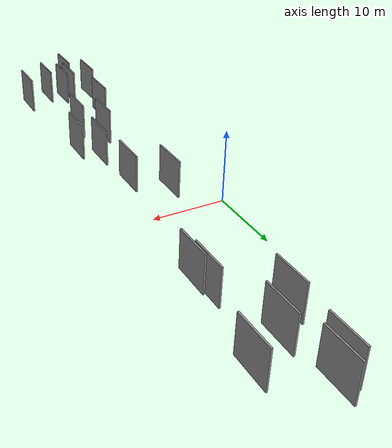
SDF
<sdf version="1.6">
 <world name="default">
  <scene>
   <sky><clouds><speed>12</speed></clouds></sky>
   <ambient>0.4 0.4 0.4 1</ambient>
   <background>0.7 0.7 0.7 1</background>
   <shadows>1</shadows>
  </scene>
  <gravity>0 0 -9.8066</gravity>
  <magnetic_field>6e-06 2.3e-05 -4.2e-05</magnetic_field>
  <physics default="0" name="default_physics" type="ode">
   <ode>
    <solver>
     <type>quick</type>
     <iters>10</iters>
     <sor>1.0</sor>
     <use_dynamic_moi_rescaling>0</use_dynamic_moi_rescaling>
    </solver>
    <constraints>
     <cfm>0</cfm>
     <erp>0.2</erp>
     <contact_max_correcting_vel>100</contact_max_correcting_vel>
     <contact_surface_layer>0.001</contact_surface_layer>
    </constraints>
   </ode>
   <max_step_size>0.004</max_step_size>
   <real_time_factor>1</real_time_factor>
   <real_time_update_rate>250</real_time_update_rate>
  </physics>
  <light name="sun" type="directional">
   <pose>0 0 10 0 0 0</pose>
   <diffuse>0.8 0.8 0.8 1</diffuse>
   <specular>0.2 0.2 0.2 1</specular>
   <attenuation>
    <range>1000</range>
    <constant>0.9</constant>
    <linear>0.01</linear>
    <quadratic>0.001</quadratic>
   </attenuation>
   <direction>-0.5 0.1 -0.9</direction>
  </light>
  <model name="grey_wall_1">
   <static>1</static>
   <pose>11.2324 -13.6043 2.5 0.000000 0.000000 1.570796</pose>
   <link name="link">
    <pose>0 0 2.50 0 0 0</pose>
    <collision name="collision"><geometry><box><size>5.00 0.2 5.00</size></box></geometry></collision>
    <visual name="visual">
     <cast_shadows>0</cast_shadows>
     <geometry><box><size>5.00 0.2 5.00</size></box></geometry>
     <material>
      <script>
       <uri>model://grey_wall/materials/scripts</uri>
       <uri>model://grey_wall/materials/textures</uri>
       <name>vrc/grey_wall</name>
      </script>
     </material>
    </visual>
   </link>
  </model>
  <model name="grey_wall_2">
   <static>1</static>
   <pose>15.1090 28.3964 2.5 0.000000 0.000000 1.570796</pose>
   <link name="link">
    <pose>0 0 2.50 0 0 0</pose>
    <collision name="collision"><geometry><box><size>5.00 0.2 5.00</size></box></geometry></collision>
    <visual name="visual">
     <cast_shadows>0</cast_shadows>
     <geometry><box><size>5.00 0.2 5.00</size></box></geometry>
     <material>
      <script>
       <uri>model://grey_wall/materials/scripts</uri>
       <uri>model://grey_wall/materials/textures</uri>
       <name>vrc/grey_wall</name>
      </script>
     </material>
    </visual>
   </link>
  </model>
  <model name="grey_wall_3">
   <static>1</static>
   <pose>10.6734 -36.5269 2.5 0.000000 0.000000 1.570796</pose>
   <link name="link">
    <pose>0 0 2.50 0 0 0</pose>
    <collision name="collision"><geometry><box><size>5.00 0.2 5.00</size></box></geometry></collision>
    <visual name="visual">
     <cast_shadows>0</cast_shadows>
     <geometry><box><size>5.00 0.2 5.00</size></box></geometry>
     <material>
      <script>
       <uri>model://grey_wall/materials/scripts</uri>
       <uri>model://grey_wall/materials/textures</uri>
       <name>vrc/grey_wall</name>
      </script>
     </material>
    </visual>
   </link>
  </model>
  <model name="grey_wall_4">
   <static>1</static>
   <pose>10.4701 26.0214 2.5 0.000000 0.000000 1.570796</pose>
   <link name="link">
    <pose>0 0 2.50 0 0 0</pose>
    <collision name="collision"><geometry><box><size>5.00 0.2 5.00</size></box></geometry></collision>
    <visual name="visual">
     <cast_shadows>0</cast_shadows>
     <geometry><box><size>5.00 0.2 5.00</size></box></geometry>
     <material>
      <script>
       <uri>model://grey_wall/materials/scripts</uri>
       <uri>model://grey_wall/materials/textures</uri>
       <name>vrc/grey_wall</name>
      </script>
     </material>
    </visual>
   </link>
  </model>
  <model name="grey_wall_5">
   <static>1</static>
   <pose>10.9278 -22.4610 2.5 0.000000 0.000000 1.570796</pose>
   <link name="link">
    <pose>0 0 2.50 0 0 0</pose>
    <collision name="collision"><geometry><box><size>5.00 0.2 5.00</size></box></geometry></collision>
    <visual name="visual">
     <cast_shadows>0</cast_shadows>
     <geometry><box><size>5.00 0.2 5.00</size></box></geometry>
     <material>
      <script>
       <uri>model://grey_wall/materials/scripts</uri>
       <uri>model://grey_wall/materials/textures</uri>
       <name>vrc/grey_wall</name>
      </script>
     </material>
    </visual>
   </link>
  </model>
  <model name="grey_wall_6">
   <static>1</static>
   <pose>7.5267 -34.7965 2.5 0.000000 0.000000 1.570796</pose>
   <link name="link">
    <pose>0 0 2.50 0 0 0</pose>
    <collision name="collision"><geometry><box><size>5.00 0.2 5.00</size></box></geometry></collision>
    <visual name="visual">
     <cast_shadows>0</cast_shadows>
     <geometry><box><size>5.00 0.2 5.00</size></box></geometry>
     <material>
      <script>
       <uri>model://grey_wall/materials/scripts</uri>
       <uri>model://grey_wall/materials/textures</uri>
       <name>vrc/grey_wall</name>
      </script>
     </material>
    </visual>
   </link>
  </model>
  <model name="grey_wall_7">
   <static>1</static>
   <pose>8.2335 -19.3178 2.5 0.000000 0.000000 1.570796</pose>
   <link name="link">
    <pose>0 0 2.50 0 0 0</pose>
    <collision name="collision"><geometry><box><size>5.00 0.2 5.00</size></box></geometry></collision>
    <visual name="visual">
     <cast_shadows>0</cast_shadows>
     <geometry><box><size>5.00 0.2 5.00</size></box></geometry>
     <material>
      <script>
       <uri>model://grey_wall/materials/scripts</uri>
       <uri>model://grey_wall/materials/textures</uri>
       <name>vrc/grey_wall</name>
      </script>
     </material>
    </visual>
   </link>
  </model>
  <model name="grey_wall_8">
   <static>1</static>
   <pose>6.6484 -2.2012 2.5 0.000000 0.000000 1.570796</pose>
   <link name="link">
    <pose>0 0 2.50 0 0 0</pose>
    <collision name="collision"><geometry><box><size>5.00 0.2 5.00</size></box></geometry></collision>
    <visual name="visual">
     <cast_shadows>0</cast_shadows>
     <geometry><box><size>5.00 0.2 5.00</size></box></geometry>
     <material>
      <script>
       <uri>model://grey_wall/materials/scripts</uri>
       <uri>model://grey_wall/materials/textures</uri>
       <name>vrc/grey_wall</name>
      </script>
     </material>
    </visual>
   </link>
  </model>
  <model name="grey_wall_9">
   <static>1</static>
   <pose>4.3277 -34.9484 2.5 0.000000 0.000000 1.570796</pose>
   <link name="link">
    <pose>0 0 2.50 0 0 0</pose>
    <collision name="collision"><geometry><box><size>5.00 0.2 5.00</size></box></geometry></collision>
    <visual name="visual">
     <cast_shadows>0</cast_shadows>
     <geometry><box><size>5.00 0.2 5.00</size></box></geometry>
     <material>
      <script>
       <uri>model://grey_wall/materials/scripts</uri>
       <uri>model://grey_wall/materials/textures</uri>
       <name>vrc/grey_wall</name>
      </script>
     </material>
    </visual>
   </link>
  </model>
  <model name="grey_wall_10">
   <static>1</static>
   <pose>14.4307 -34.5241 2.5 0.000000 0.000000 1.570796</pose>
   <link name="link">
    <pose>0 0 2.50 0 0 0</pose>
    <collision name="collision"><geometry><box><size>5.00 0.2 5.00</size></box></geometry></collision>
    <visual name="visual">
     <cast_shadows>0</cast_shadows>
     <geometry><box><size>5.00 0.2 5.00</size></box></geometry>
     <material>
      <script>
       <uri>model://grey_wall/materials/scripts</uri>
       <uri>model://grey_wall/materials/textures</uri>
       <name>vrc/grey_wall</name>
      </script>
     </material>
    </visual>
   </link>
  </model>
  <model name="grey_wall_11">
   <static>1</static>
   <pose>7.1669 23.0057 2.5 0.000000 0.000000 1.570796</pose>
   <link name="link">
    <pose>0 0 2.50 0 0 0</pose>
    <collision name="collision"><geometry><box><size>5.00 0.2 5.00</size></box></geometry></collision>
    <visual name="visual">
     <cast_shadows>0</cast_shadows>
     <geometry><box><size>5.00 0.2 5.00</size></box></geometry>
     <material>
      <script>
       <uri>model://grey_wall/materials/scripts</uri>
       <uri>model://grey_wall/materials/textures</uri>
       <name>vrc/grey_wall</name>
      </script>
     </material>
    </visual>
   </link>
  </model>
  <model name="grey_wall_12">
   <static>1</static>
   <pose>9.3892 32.8142 2.5 0.000000 0.000000 1.570796</pose>
   <link name="link">
    <pose>0 0 2.50 0 0 0</pose>
    <collision name="collision"><geometry><box><size>5.00 0.2 5.00</size></box></geometry></collision>
    <visual name="visual">
     <cast_shadows>0</cast_shadows>
     <geometry><box><size>5.00 0.2 5.00</size></box></geometry>
     <material>
      <script>
       <uri>model://grey_wall/materials/scripts</uri>
       <uri>model://grey_wall/materials/textures</uri>
       <name>vrc/grey_wall</name>
      </script>
     </material>
    </visual>
   </link>
  </model>
  <model name="grey_wall_13">
   <static>1</static>
   <pose>10.7094 -5.6626 2.5 0.000000 0.000000 1.570796</pose>
   <link name="link">
    <pose>0 0 2.50 0 0 0</pose>
    <collision name="collision"><geometry><box><size>5.00 0.2 5.00</size></box></geometry></collision>
    <visual name="visual">
     <cast_shadows>0</cast_shadows>
     <geometry><box><size>5.00 0.2 5.00</size></box></geometry>
     <material>
      <script>
       <uri>model://grey_wall/materials/scripts</uri>
       <uri>model://grey_wall/materials/textures</uri>
       <name>vrc/grey_wall</name>
      </script>
     </material>
    </visual>
   </link>
  </model>
  <model name="grey_wall_14">
   <static>1</static>
   <pose>8.5868 -34.9363 2.5 0.000000 0.000000 1.570796</pose>
   <link name="link">
    <pose>0 0 2.50 0 0 0</pose>
    <collision name="collision"><geometry><box><size>5.00 0.2 5.00</size></box></geometry></collision>
    <visual name="visual">
     <cast_shadows>0</cast_shadows>
     <geometry><box><size>5.00 0.2 5.00</size></box></geometry>
     <material>
      <script>
       <uri>model://grey_wall/materials/scripts</uri>
       <uri>model://grey_wall/materials/textures</uri>
       <name>vrc/grey_wall</name>
      </script>
     </material>
    </visual>
   </link>
  </model>
  <model name="grey_wall_15">
   <static>1</static>
   <pose>13.0267 17.5939 2.5 0.000000 0.000000 1.570796</pose>
   <link name="link">
    <pose>0 0 2.50 0 0 0</pose>
    <collision name="collision"><geometry><box><size>5.00 0.2 5.00</size></box></geometry></collision>
    <visual name="visual">
     <cast_shadows>0</cast_shadows>
     <geometry><box><size>5.00 0.2 5.00</size></box></geometry>
     <material>
      <script>
       <uri>model://grey_wall/materials/scripts</uri>
       <uri>model://grey_wall/materials/textures</uri>
       <name>vrc/grey_wall</name>
      </script>
     </material>
    </visual>
   </link>
  </model>
  <model name="grey_wall_16">
   <static>1</static>
   <pose>13.3764 15.1499 2.5 0.000000 0.000000 1.570796</pose>
   <link name="link">
    <pose>0 0 2.50 0 0 0</pose>
    <collision name="collision"><geometry><box><size>5.00 0.2 5.00</size></box></geometry></collision>
    <visual name="visual">
     <cast_shadows>0</cast_shadows>
     <geometry><box><size>5.00 0.2 5.00</size></box></geometry>
     <material>
      <script>
       <uri>model://grey_wall/materials/scripts</uri>
       <uri>model://grey_wall/materials/textures</uri>
       <name>vrc/grey_wall</name>
      </script>
     </material>
    </visual>
   </link>
  </model>
  <model name="grey_wall_17">
   <static>1</static>
   <pose>6.6458 -39.2104 2.5 0.000000 0.000000 1.570796</pose>
   <link name="link">
    <pose>0 0 2.50 0 0 0</pose>
    <collision name="collision"><geometry><box><size>5.00 0.2 5.00</size></box></geometry></collision>
    <visual name="visual">
     <cast_shadows>0</cast_shadows>
     <geometry><box><size>5.00 0.2 5.00</size></box></geometry>
     <material>
      <script>
       <uri>model://grey_wall/materials/scripts</uri>
       <uri>model://grey_wall/materials/textures</uri>
       <name>vrc/grey_wall</name>
      </script>
     </material>
    </visual>
   </link>
  </model>
  <model name="grey_wall_18">
   <static>1</static>
   <pose>7.9014 31.6929 2.5 0.000000 0.000000 1.570796</pose>
   <link name="link">
    <pose>0 0 2.50 0 0 0</pose>
    <collision name="collision"><geometry><box><size>5.00 0.2 5.00</size></box></geometry></collision>
    <visual name="visual">
     <cast_shadows>0</cast_shadows>
     <geometry><box><size>5.00 0.2 5.00</size></box></geometry>
     <material>
      <script>
       <uri>model://grey_wall/materials/scripts</uri>
       <uri>model://grey_wall/materials/textures</uri>
       <name>vrc/grey_wall</name>
      </script>
     </material>
    </visual>
   </link>
  </model>
  <model name="grey_wall_19">
   <static>1</static>
   <pose>13.4053 -16.4811 2.5 0.000000 0.000000 1.570796</pose>
   <link name="link">
    <pose>0 0 2.50 0 0 0</pose>
    <collision name="collision"><geometry><box><size>5.00 0.2 5.00</size></box></geometry></collision>
    <visual name="visual">
     <cast_shadows>0</cast_shadows>
     <geometry><box><size>5.00 0.2 5.00</size></box></geometry>
     <material>
      <script>
       <uri>model://grey_wall/materials/scripts</uri>
       <uri>model://grey_wall/materials/textures</uri>
       <name>vrc/grey_wall</name>
      </script>
     </material>
    </visual>
   </link>
  </model>
  <model name="grey_wall_20">
   <static>1</static>
   <pose>5.5808 -26.9635 2.5 0.000000 0.000000 1.570796</pose>
   <link name="link">
    <pose>0 0 2.50 0 0 0</pose>
    <collision name="collision"><geometry><box><size>5.00 0.2 5.00</size></box></geometry></collision>
    <visual name="visual">
     <cast_shadows>0</cast_shadows>
     <geometry><box><size>5.00 0.2 5.00</size></box></geometry>
     <material>
      <script>
       <uri>model://grey_wall/materials/scripts</uri>
       <uri>model://grey_wall/materials/textures</uri>
       <name>vrc/grey_wall</name>
      </script>
     </material>
    </visual>
   </link>
  </model>
 </world>
</sdf>
